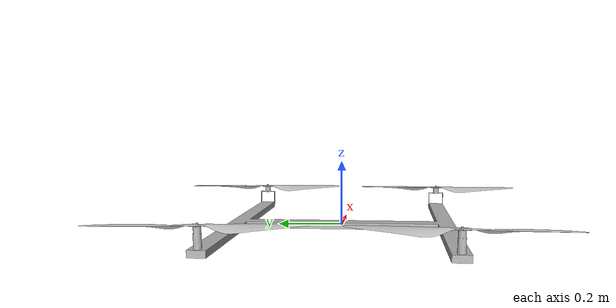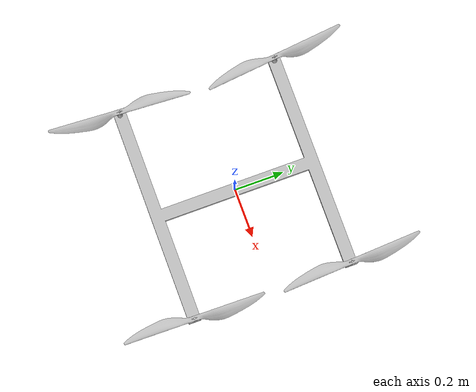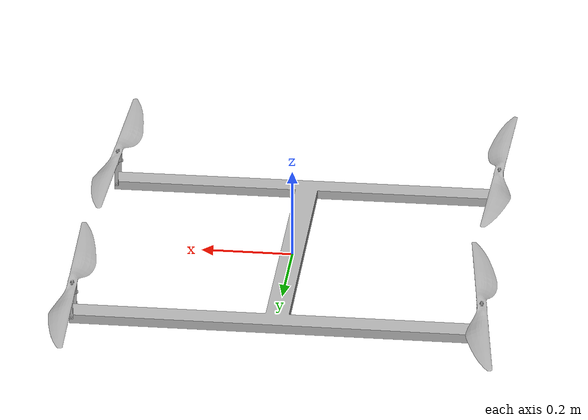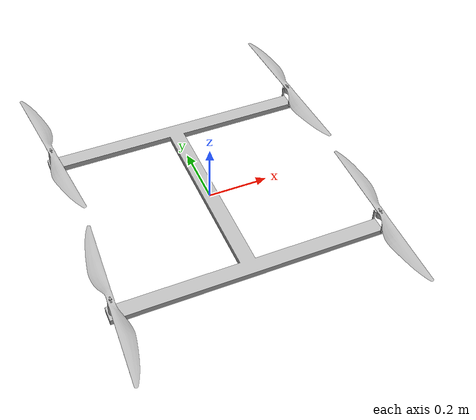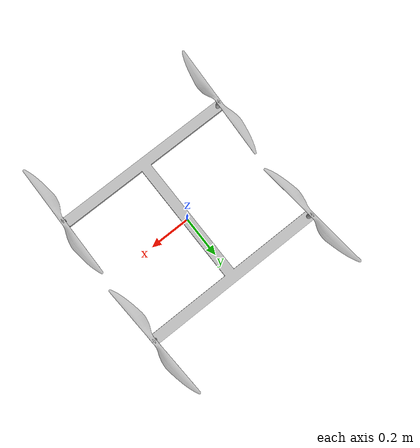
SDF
<sdf version='1.6'>
  <model name='h_frame_tilt'>
    <link name='base_link'>
      <pose frame=''>0 0 0 0 -0 0</pose>
      <inertial>
        <pose frame=''>-0.034153 -0 0.003795 0 -0 0</pose>
        <mass>1.6105</mass>
        <inertia>
          <ixx>0.13199</ixx>
          <ixy>-6.142e-18</ixy>
          <ixz>0.00024729</ixz>
          <iyy>0.077457</iyy>
          <iyz>7.4254e-19</iyz>
          <izz>0.2093</izz>
        </inertia>
      </inertial>
      <collision name='base_link_collision'>
        <pose frame=''>0 0 0 0 -0 0</pose>
        <geometry>
          <mesh>
            <scale>1 1 1</scale>
            <uri>model://h_frame_tilt/meshes/base_link.STL</uri>
          </mesh>
        </geometry>
      </collision>
      <visual name='base_link_visual'>
        <pose frame=''>0 0 0 0 -0 0</pose>
        <geometry>
          <mesh>
            <scale>1 1 1</scale>
            <uri>model://h_frame_tilt/meshes/base_link.STL</uri>
          </mesh>
        </geometry>
      </visual>
    </link>
    <link name='h_frame_tilt/imu_link'>
      <inertial>
        <pose>0 0 0 0 0 0</pose>
        <mass>0.15</mass>
        <inertia>
          <ixx>0.00001</ixx>
          <ixy>0</ixy>
          <ixz>0</ixz>
          <iyy>0.00002</iyy>
          <iyz>0</iyz>
          <izz>0.00002</izz>
        </inertia>
      </inertial>
      <sensor name="imu_sensor" type="imu">
        <pose>0 0 0 3.141593 0 0</pose>
        <always_on>1</always_on>
        <update_rate>1000.0</update_rate>
      </sensor>
    </link>
    <joint name='h_frame_tilt/imu_joint' type='revolute'>
      <child>h_frame_tilt/imu_link</child>
      <parent>base_link</parent>
      <axis>
        <xyz>0 0 1</xyz>
        <limit>
          <lower>0</lower>
          <upper>0</upper>
          <effort>0</effort>
          <velocity>0</velocity>
        </limit>
        <dynamics>
          <damping>1.0</damping>
        </dynamics>
        <use_parent_model_frame>1</use_parent_model_frame>
      </axis>
      <physics>
        <ode>
          <implicit_spring_damper>1</implicit_spring_damper>
        </ode>
      </physics>
    </joint>
    <link name='motor_0'>
      <pose frame=''>0.435 -0.325 0.005 0 -0 0</pose>
      <inertial>
        <pose frame=''>0 0 0.048702 0 -0 0</pose>
        <mass>0.069653</mass>
        <inertia>
          <ixx>2.7086e-05</ixx>
          <ixy>-5.5282e-22</ixy>
          <ixz>4.1684e-22</ixz>
          <iyy>1.7498e-05</iyy>
          <iyz>-7.4714e-21</iyz>
          <izz>1.2525e-05</izz>
        </inertia>
      </inertial>
      <collision name='motor_0_collision'>
        <pose frame=''>0 0 0 0 -0 0</pose>
        <geometry>
          <mesh>
            <scale>1 1 1</scale>
            <uri>model://h_frame_tilt/meshes/motor_0.STL</uri>
          </mesh>
        </geometry>
      </collision>
      <visual name='motor_0_visual'>
        <pose frame=''>0 0 0 0 -0 0</pose>
        <geometry>
          <mesh>
            <scale>1 1 1</scale>
            <uri>model://h_frame_tilt/meshes/motor_0.STL</uri>
          </mesh>
        </geometry>
      </visual>
    </link>
    <joint name='motor_0_joint' type='revolute'>
      <child>motor_0</child>
      <parent>base_link</parent>
      <axis>
        <xyz>0 1 0</xyz>
        <limit>
          <lower>-0.017453</lower>
          <upper>1.5708</upper>
          <effort>0</effort>
          <velocity>0</velocity>
        </limit>
        <dynamics>
          <spring_reference>0</spring_reference>
          <spring_stiffness>0</spring_stiffness>
        </dynamics>
        <use_parent_model_frame>1</use_parent_model_frame>
      </axis>
    </joint>
    <link name='rotor_0'>
      <pose frame=''>0.435 -0.325 0.052 0 -0 0</pose>
      <inertial>
        <pose frame=''>-0 -0 0.01856 0 -0 0</pose>
        <mass>0.067291</mass>
        <inertia>
          <ixx>0.0014406</ixx>
          <ixy>-8.148e-05</ixy>
          <ixz>1.1993e-12</ixz>
          <iyy>1.3241e-05</iyy>
          <iyz>9.4413e-13</iyz>
          <izz>0.0014525</izz>
        </inertia>
      </inertial>
      <collision name='rotor_0_collision'>
        <pose frame=''>0 0 0 0 -0 0</pose>
        <geometry>
          <mesh>
            <scale>1 1 1</scale>
            <uri>model://h_frame_tilt/meshes/rotor_0.STL</uri>
          </mesh>
        </geometry>
      </collision>
      <visual name='rotor_0_visual'>
        <pose frame=''>0 0 0 0 -0 0</pose>
        <geometry>
          <mesh>
            <scale>1 1 1</scale>
            <uri>model://h_frame_tilt/meshes/rotor_0.STL</uri>
          </mesh>
        </geometry>
      </visual>
    </link>
    <joint name='rotor_0_joint' type='revolute'>
      <child>rotor_0</child>
      <parent>motor_0</parent>
      <axis>
        <xyz>0 0 1</xyz>
        <limit>
          <lower>-1e+16</lower>
          <upper>1e+16</upper>
        </limit>
        <dynamics>
          <spring_reference>0</spring_reference>
          <spring_stiffness>0</spring_stiffness>
        </dynamics>
        <use_parent_model_frame>1</use_parent_model_frame>
      </axis>
    </joint>
    <link name='motor_2'>
      <pose frame=''>0.435 0.325 0.005 0 -0 0</pose>
      <inertial>
        <pose frame=''>0 0 0.048702 0 -0 0</pose>
        <mass>0.069653</mass>
        <inertia>
          <ixx>2.7086e-05</ixx>
          <ixy>-5.5793e-22</ixy>
          <ixz>4.1248e-22</ixz>
          <iyy>1.7498e-05</iyy>
          <iyz>-6.6645e-21</iyz>
          <izz>1.2525e-05</izz>
        </inertia>
      </inertial>
      <collision name='motor_2_collision'>
        <pose frame=''>0 0 0 0 -0 0</pose>
        <geometry>
          <mesh>
            <scale>1 1 1</scale>
            <uri>model://h_frame_tilt/meshes/motor_2.STL</uri>
          </mesh>
        </geometry>
      </collision>
      <visual name='motor_2_visual'>
        <pose frame=''>0 0 0 0 -0 0</pose>
        <geometry>
          <mesh>
            <scale>1 1 1</scale>
            <uri>model://h_frame_tilt/meshes/motor_2.STL</uri>
          </mesh>
        </geometry>
      </visual>
    </link>
    <joint name='motor_2_joint' type='revolute'>
      <child>motor_2</child>
      <parent>base_link</parent>
      <axis>
        <xyz>0 1 0</xyz>
        <limit>
          <lower>-0.017453</lower>
          <upper>1.5708</upper>
          <effort>0</effort>
          <velocity>0</velocity>
        </limit>
        <dynamics>
          <spring_reference>0</spring_reference>
          <spring_stiffness>0</spring_stiffness>
        </dynamics>
        <use_parent_model_frame>1</use_parent_model_frame>
      </axis>
    </joint>
    <link name='rotor_2'>
      <pose frame=''>0.435 0.325 0.052 0 -0 0</pose>
      <inertial>
        <pose frame=''>-0 -0 0.01856 0 -0 0</pose>
        <mass>0.067291</mass>
        <inertia>
          <ixx>0.0014451</ixx>
          <ixy>1.4273e-05</ixy>
          <ixz>6.5469e-13</ixz>
          <iyy>8.7466e-06</iyy>
          <iyz>3.5489e-12</iyz>
          <izz>0.0014525</izz>
        </inertia>
      </inertial>
      <collision name='rotor_2_collision'>
        <pose frame=''>0 0 0 0 -0 0</pose>
        <geometry>
          <mesh>
            <scale>1 1 1</scale>
            <uri>model://h_frame_tilt/meshes/rotor_2.STL</uri>
          </mesh>
        </geometry>
      </collision>
      <visual name='rotor_2_visual'>
        <pose frame=''>0 0 0 0 -0 0</pose>
        <geometry>
          <mesh>
            <scale>1 1 1</scale>
            <uri>model://h_frame_tilt/meshes/rotor_2.STL</uri>
          </mesh>
        </geometry>
      </visual>
    </link>
    <joint name='rotor_2_joint' type='revolute'>
      <child>rotor_2</child>
      <parent>motor_2</parent>
      <axis>
        <xyz>0 0 1</xyz>
        <limit>
          <lower>-1e+16</lower>
          <upper>1e+16</upper>
        </limit>
        <dynamics>
          <spring_reference>0</spring_reference>
          <spring_stiffness>0</spring_stiffness>
        </dynamics>
        <use_parent_model_frame>1</use_parent_model_frame>
      </axis>
    </joint>
    <link name='rotor_1'>
      <pose frame=''>-0.435 0.325 0.053413 0 -0 0</pose>
      <inertial>
        <pose frame=''>-0 -0 0.015147 0 -0 0</pose>
        <mass>0.067291</mass>
        <inertia>
          <ixx>0.0014403</ixx>
          <ixy>8.41e-05</ixy>
          <ixz>1.0874e-12</ixz>
          <iyy>1.3545e-05</iyy>
          <iyz>1.0294e-12</iyz>
          <izz>0.0014525</izz>
        </inertia>
      </inertial>
      <collision name='rotor_1_collision'>
        <pose frame=''>0 0 0 0 -0 0</pose>
        <geometry>
          <mesh>
            <scale>1 1 1</scale>
            <uri>model://h_frame_tilt/meshes/rotor_1.STL</uri>
          </mesh>
        </geometry>
      </collision>
      <visual name='rotor_1_visual'>
        <pose frame=''>0 0 0 0 -0 0</pose>
        <geometry>
          <mesh>
            <scale>1 1 1</scale>
            <uri>model://h_frame_tilt/meshes/rotor_1.STL</uri>
          </mesh>
        </geometry>
      </visual>
    </link>
    <joint name='rotor_1_joint' type='revolute'>
      <child>rotor_1</child>
      <parent>base_link</parent>
      <axis>
        <xyz>0 0 1</xyz>
        <limit>
          <lower>-1e+16</lower>
          <upper>1e+16</upper>
        </limit>
        <dynamics>
          <spring_reference>0</spring_reference>
          <spring_stiffness>0</spring_stiffness>
        </dynamics>
        <use_parent_model_frame>1</use_parent_model_frame>
      </axis>
    </joint>
    <link name='rotor_3'>
      <pose frame=''>-0.435 -0.325 0.053413 0 -0 0</pose>
      <inertial>
        <pose frame=''>0 -0 0.015147 0 -0 0</pose>
        <mass>0.067296</mass>
        <inertia>
          <ixx>0.0014451</ixx>
          <ixy>-1.9205e-05</ixy>
          <ixz>-1.1812e-12</ixz>
          <iyy>8.8623e-06</iyy>
          <iyz>1.05e-12</iyz>
          <izz>0.0014526</izz>
        </inertia>
      </inertial>
      <collision name='rotor_3_collision'>
        <pose frame=''>0 0 0 0 -0 0</pose>
        <geometry>
          <mesh>
            <scale>1 1 1</scale>
            <uri>model://h_frame_tilt/meshes/rotor_3.STL</uri>
          </mesh>
        </geometry>
      </collision>
      <visual name='rotor_3_visual'>
        <pose frame=''>0 0 0 0 -0 0</pose>
        <geometry>
          <mesh>
            <scale>1 1 1</scale>
            <uri>model://h_frame_tilt/meshes/rotor_3.STL</uri>
          </mesh>
        </geometry>
      </visual>
    </link>
    <joint name='rotor_3_joint' type='revolute'>
      <child>rotor_3</child>
      <parent>base_link</parent>
      <axis>
        <xyz>0 0 1</xyz>
        <limit>
          <lower>-1e+16</lower>
          <upper>1e+16</upper>
        </limit>
        <dynamics>
          <spring_reference>0</spring_reference>
          <spring_stiffness>0</spring_stiffness>
        </dynamics>
        <use_parent_model_frame>1</use_parent_model_frame>
      </axis>
    </joint>
    <plugin name="rotor_0_blade_1" filename="libLiftDragPlugin.so">
      <a0>0.3</a0>
      <alpha_stall>1.4</alpha_stall>
      <cla>4.2500</cla>
      <cda>0.10</cda>
      <cma>0.00</cma>
      <cla_stall>-0.025</cla_stall>
      <cda_stall>0.0</cda_stall>
      <cma_stall>0.0</cma_stall>
      <area>0.01</area>
      <air_density>1.2041</air_density>
      <cp>0  0.093 0</cp>
      <forward>-1 0 0</forward>
      <upward>0 0 1</upward>
      <link_name>rotor_0</link_name>
    </plugin>
    <plugin name="rotor_0_blade_2" filename="libLiftDragPlugin.so">
      <a0>0.3</a0>
      <alpha_stall>1.4</alpha_stall>
      <cla>4.2500</cla>
      <cda>0.10</cda>
      <cma>0.00</cma>
      <cla_stall>-0.025</cla_stall>
      <cda_stall>0.0</cda_stall>
      <cma_stall>0.0</cma_stall>
      <area>0.01</area>
      <air_density>1.2041</air_density>
       <cp>0 -0.093 0</cp>
      <forward>1 0 0</forward>
      <upward>0 0 1</upward>
      <link_name>rotor_0</link_name>
    </plugin>
 <plugin name="rotor_1_blade_1" filename="libLiftDragPlugin.so">
      <a0>0.3</a0>
      <alpha_stall>1.4</alpha_stall>
      <cla>4.2500</cla>
      <cda>0.10</cda>
      <cma>0.00</cma>
      <cla_stall>-0.025</cla_stall>
      <cda_stall>0.0</cda_stall>
      <cma_stall>0.0</cma_stall>
      <area>0.01</area>
      <air_density>1.2041</air_density>
       <cp>0 0.093 0</cp>
      <forward>-1 0 0</forward>
      <upward>0 0 1</upward>
      <link_name>rotor_1</link_name>
    </plugin>
    <plugin name="rotor_1_blade_2" filename="libLiftDragPlugin.so">
      <a0>0.3</a0>
      <alpha_stall>1.4</alpha_stall>
      <cla>4.2500</cla>
      <cda>0.10</cda>
      <cma>0.00</cma>
      <cla_stall>-0.025</cla_stall>
      <cda_stall>0.0</cda_stall>
      <cma_stall>0.0</cma_stall>
      <area>0.01</area>
      <air_density>1.2041</air_density>
      <cp>0  -0.093 0</cp>
      <forward>1 0 0</forward>
      <upward>0 0 1</upward>
      <link_name>rotor_1</link_name>
    </plugin>
<plugin name="rotor_2_blade_1" filename="libLiftDragPlugin.so">
      <a0>0.3</a0>
      <alpha_stall>1.4</alpha_stall>
      <cla>4.2500</cla>
      <cda>0.10</cda>
      <cma>0.00</cma>
      <cla_stall>-0.025</cla_stall>
      <cda_stall>0.0</cda_stall>
      <cma_stall>0.0</cma_stall>
      <area>0.01</area>
      <air_density>1.2041</air_density>
      <cp>0  0.093 0</cp>
      <forward>1 0 0</forward>
      <upward>0 0 1</upward>
      <link_name>rotor_2</link_name>
    </plugin>
    <plugin name="rotor_2_blade_2" filename="libLiftDragPlugin.so">
      <a0>0.3</a0>
      <alpha_stall>1.4</alpha_stall>
      <cla>4.2500</cla>
      <cda>0.10</cda>
      <cma>0.00</cma>
      <cla_stall>-0.025</cla_stall>
      <cda_stall>0.0</cda_stall>
      <cma_stall>0.0</cma_stall>
      <area>0.01</area>
      <air_density>1.2041</air_density>
       <cp>0 -0.093 0</cp>
      <forward>-1 0 0</forward>
      <upward>0 0 1</upward>
      <link_name>rotor_2</link_name>
    </plugin>
<plugin name="rotor_3_blade_1" filename="libLiftDragPlugin.so">
      <a0>0.3</a0>
      <alpha_stall>1.4</alpha_stall>
      <cla>4.2500</cla>
      <cda>0.10</cda>
      <cma>0.00</cma>
      <cla_stall>-0.025</cla_stall>
      <cda_stall>0.0</cda_stall>
      <cma_stall>0.0</cma_stall>
      <area>0.01</area>
      <air_density>1.2041</air_density>
      <cp>0  0.093 0</cp>
      <forward>1 0 0</forward>
      <upward>0 0 1</upward>
      <link_name>rotor_3</link_name>
    </plugin>
    <plugin name="rotor_3_blade_2" filename="libLiftDragPlugin.so">
      <a0>0.3</a0>
      <alpha_stall>1.4</alpha_stall>
      <cla>4.2500</cla>
      <cda>0.10</cda>
      <cma>0.00</cma>
      <cla_stall>-0.025</cla_stall>
      <cda_stall>0.0</cda_stall>
      <cma_stall>0.0</cma_stall>
      <area>0.01</area>
      <air_density>1.2041</air_density>
       <cp>0 -0.093 0</cp>
      <forward>-1 0 0</forward>
      <upward>0 0 1</upward>
      <link_name>rotor_3</link_name>
    </plugin>
 <plugin name="arducopter_plugin" filename="libArduPilotPlugin.so">
      <fdm_addr>127.0.0.1</fdm_addr>
      <fdm_port_in>9002</fdm_port_in>
      <fdm_port_out>9003</fdm_port_out>
      <!--
          Require by APM :
          Only change model and gazebo from XYZ to XY-Z coordinates
      -->
      <modelXYZToAirplaneXForwardZDown>0 0 0 3.141593 0 0</modelXYZToAirplaneXForwardZDown>
      <gazeboXYZToNED>0 0 0 3.141593 0 0</gazeboXYZToNED>
      <imuName>h_frame_tilt/imu_link::imu_sensor</imuName>
      <connectionTimeoutMaxCount>5</connectionTimeoutMaxCount>

      <control channel="0">
        <multiplier>-1</multiplier>
        <offset>-0.5</offset>
        <type>POSITION</type>
        <p_gain>10.0</p_gain>
        <i_gain>0</i_gain>
        <d_gain>0</d_gain>
        <i_max>0</i_max>
        <i_min>0</i_min>
        <cmd_max>2.0</cmd_max>
        <cmd_min>-2.0</cmd_min>
        <jointName>motor_0_joint</jointName>
      </control>
      <control channel="1">
        <multiplier>-1</multiplier>
        <offset>-0.5</offset>
        <type>POSITION</type>
        <p_gain>10.0</p_gain>
        <i_gain>0</i_gain>
        <d_gain>0</d_gain>
        <i_max>0</i_max>
        <i_min>0</i_min>
        <cmd_max>2.0</cmd_max>
        <cmd_min>-2.0</cmd_min>
        <jointName>motor_2_joint</jointName>
      </control>
      <control channel="5">
        <type>VELOCITY</type>
        <offset>0</offset>
        <p_gain>0.20</p_gain>
        <i_gain>0</i_gain>
        <d_gain>0</d_gain>
        <i_max>0</i_max>
        <i_min>0</i_min>
        <cmd_max>2.5</cmd_max>
        <cmd_min>-2.5</cmd_min>
        <jointName>rotor_0_joint</jointName>
        <multiplier>838</multiplier>
        <controlVelocitySlowdownSim>1</controlVelocitySlowdownSim>
      </control>
      <control channel="6">
        <type>VELOCITY</type>
        <offset>0</offset>
        <p_gain>0.20</p_gain>
        <i_gain>0</i_gain>
        <d_gain>0</d_gain>
        <i_max>0</i_max>
        <i_min>0</i_min>
        <cmd_max>2.5</cmd_max>
        <cmd_min>-2.5</cmd_min>
        <jointName>rotor_1_joint</jointName>
        <multiplier>838</multiplier>
        <controlVelocitySlowdownSim>1</controlVelocitySlowdownSim>
      </control>
      <control channel="7">
        <type>VELOCITY</type>
        <offset>0</offset>
        <p_gain>0.20</p_gain>
        <i_gain>0</i_gain>
        <d_gain>0</d_gain>
        <i_max>0</i_max>
        <i_min>0</i_min>
        <cmd_max>2.5</cmd_max>
        <cmd_min>-2.5</cmd_min>
        <jointName>rotor_2_joint</jointName>
        <multiplier>-838</multiplier>
        <controlVelocitySlowdownSim>1</controlVelocitySlowdownSim>
      </control>
      <control channel="8">
        <type>VELOCITY</type>
        <offset>0</offset>
        <p_gain>0.20</p_gain>
        <i_gain>0</i_gain>
        <d_gain>0</d_gain>
        <i_max>0</i_max>
        <i_min>0</i_min>
        <cmd_max>2.5</cmd_max>
        <cmd_min>-2.5</cmd_min>
        <jointName>rotor_3_joint</jointName>
        <multiplier>-838</multiplier>
        <controlVelocitySlowdownSim>1</controlVelocitySlowdownSim>
      </control>
    </plugin>
  </model>
</sdf>
